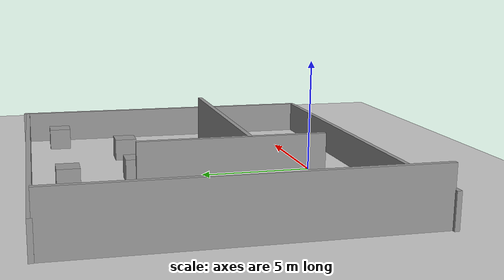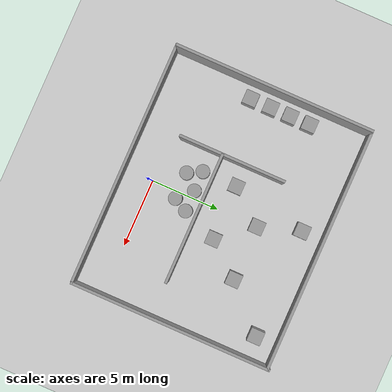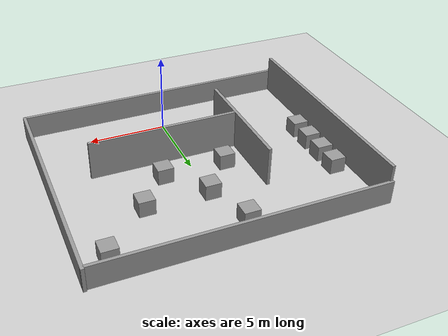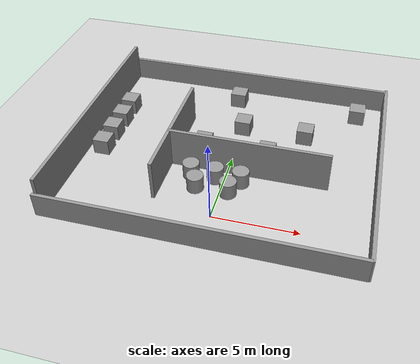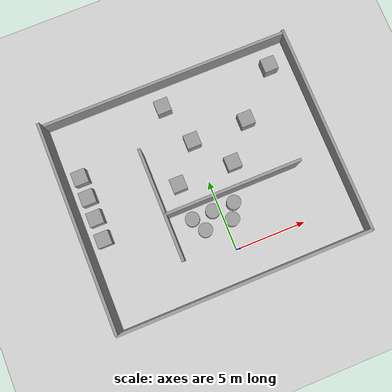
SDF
<sdf version="1.4">
 <world name="default">
  <model name="ground_plane">
   <static>1</static>
   <link name="link">
    <collision name="collision">
     <geometry><plane><normal>0 0 1</normal><size>100 100</size></plane></geometry>
     <surface><friction><ode><mu>100</mu><mu2>50</mu2></ode></friction></surface>
    </collision>
    <visual name="visual">
     <cast_shadows>0</cast_shadows>
     <geometry><plane><normal>0 0 1</normal><size>100 100</size></plane></geometry>
     <material>
      <script><uri>file://media/materials/scripts/gazebo.material</uri><name>Gazebo/Grey</name></script>
     </material>
    </visual>
    <velocity_decay><linear>0</linear><angular>0</angular></velocity_decay>
   </link>
  </model>
  <light name="sun" type="directional">
   <pose>0 0 10 0 -0 0</pose>
   <diffuse>0.8 0.8 0.8 1</diffuse>
   <specular>0.2 0.2 0.2 1</specular>
   <attenuation>
    <range>1000</range>
    <constant>0.9</constant>
    <linear>0.01</linear>
    <quadratic>0.001</quadratic>
   </attenuation>
   <direction>-0.5 0.1 -0.9</direction>
  </light>
  <model name="IAEA_map">
   <link name="Wall_0">
    <collision name="Wall_0_Collision">
     <geometry><box><size>18 0.2 1.5</size></box></geometry>
     <pose>0 0 0.75 0 -0 0</pose>
    </collision>
    <visual name="Wall_0_Visual">
     <pose>0 0 0.75 0 -0 0</pose>
     <geometry><box><size>18 0.2 1.5</size></box></geometry>
     <material>
      <script><uri>file://media/materials/scripts/gazebo.material</uri><name>Gazebo/Grey</name></script>
     </material>
    </visual>
    <velocity_decay><linear>0</linear><angular>0</angular></velocity_decay>
    <pose>-0.314004 -2.14957 0 0 -0 0</pose>
   </link>
   <link name="Wall_11">
    <collision name="Wall_11_Collision">
     <geometry><box><size>7.82992 0.2 2.5</size></box></geometry>
     <pose>0 0 1.25 0 -0 0</pose>
    </collision>
    <visual name="Wall_11_Visual">
     <pose>0 0 1.25 0 -0 0</pose>
     <geometry><box><size>7.82992 0.2 2.5</size></box></geometry>
     <material>
      <script><uri>file://media/materials/scripts/gazebo.material</uri><name>Gazebo/Grey</name></script>
     </material>
    </visual>
    <velocity_decay><linear>0</linear><angular>0</angular></velocity_decay>
    <pose>-3.54498 4.53843 0 0 0 -1.5708</pose>
   </link>
   <link name="Wall_16">
    <collision name="Wall_16_Collision">
     <geometry><box><size>9.57292 0.2 2.5</size></box></geometry>
     <pose>0 0 1.25 0 -0 0</pose>
    </collision>
    <visual name="Wall_16_Visual">
     <pose>0 0 1.25 0 -0 0</pose>
     <geometry><box><size>9.57292 0.2 2.5</size></box></geometry>
     <material>
      <script><uri>file://media/materials/scripts/gazebo.material</uri><name>Gazebo/Grey</name></script>
     </material>
    </visual>
    <velocity_decay><linear>0</linear><angular>0</angular></velocity_decay>
    <pose>1.21124 3.81538 0 0 -0 0</pose>
   </link>
   <link name="Wall_5">
    <collision name="Wall_5_Collision">
     <geometry><box><size>15 0.2 1.5</size></box></geometry>
     <pose>0 0 0.75 0 -0 0</pose>
    </collision>
    <visual name="Wall_5_Visual">
     <pose>0 0 0.75 0 -0 0</pose>
     <geometry><box><size>15 0.2 1.5</size></box></geometry>
     <material>
      <script><uri>file://media/materials/scripts/gazebo.material</uri><name>Gazebo/Grey</name></script>
     </material>
    </visual>
    <velocity_decay><linear>0</linear><angular>0</angular></velocity_decay>
    <pose>8.69081 5.28551 0 0 -0 1.5708</pose>
   </link>
   <link name="Wall_7">
    <collision name="Wall_7_Collision">
     <geometry><box><size>18 0.2 1.5</size></box></geometry>
     <pose>0 0 0.75 0 -0 0</pose>
    </collision>
    <visual name="Wall_7_Visual">
     <pose>0 0 0.75 0 -0 0</pose>
     <geometry><box><size>18 0.2 1.5</size></box></geometry>
     <material>
      <script><uri>file://media/materials/scripts/gazebo.material</uri><name>Gazebo/Grey</name></script>
     </material>
    </visual>
    <velocity_decay><linear>0</linear><angular>0</angular></velocity_decay>
    <pose>-0.209187 12.5871 0 0 -0 3.14159</pose>
   </link>
   <link name="Wall_9">
    <collision name="Wall_9_Collision">
     <geometry><box><size>14.6224 0.2 2.5</size></box></geometry>
     <pose>0 0 1.25 0 -0 0</pose>
    </collision>
    <visual name="Wall_9_Visual">
     <pose>0 0 1.25 0 -0 0</pose>
     <geometry><box><size>14.6224 0.2 2.5</size></box></geometry>
     <material>
      <script><uri>file://media/materials/scripts/gazebo.material</uri><name>Gazebo/Grey</name></script>
     </material>
    </visual>
    <velocity_decay><linear>0</linear><angular>0</angular></velocity_decay>
    <pose>-9.08132 5.23629 0 0 0 -1.5708</pose>
   </link>
   <static>1</static>
  </model>
  <physics type="ode">
   <max_step_size>0.001</max_step_size>
   <real_time_factor>1</real_time_factor>
   <real_time_update_rate>1000</real_time_update_rate>
   <gravity>0 0 -9.8</gravity>
  </physics>
  <scene><ambient>0.4 0.4 0.4 1</ambient><background>0.7 0.7 0.7 1</background><shadows>1</shadows></scene>
  <spherical_coordinates>
   <surface_model>EARTH_WGS84</surface_model>
   <latitude_deg>0</latitude_deg>
   <longitude_deg>0</longitude_deg>
   <elevation>0</elevation>
   <heading_deg>0</heading_deg>
  </spherical_coordinates>
  <model name="unit_box_1">
   <pose>-8 8.48014 0.5 0 -0 0</pose>
   <link name="link">
    <inertial>
     <mass>1</mass>
     <inertia><ixx>1</ixx><ixy>0</ixy><ixz>0</ixz><iyy>1</iyy><iyz>0</iyz><izz>1</izz></inertia>
    </inertial>
    <collision name="collision"><geometry><box><size>1 1 1</size></box></geometry></collision>
    <visual name="visual">
     <geometry><box><size>1 1 1</size></box></geometry>
     <material>
      <script><uri>file://media/materials/scripts/gazebo.material</uri><name>Gazebo/Grey</name></script>
     </material>
    </visual>
    <velocity_decay><linear>0</linear><angular>0</angular></velocity_decay>
   </link>
   <static>0</static>
  </model>
  <model name="unit_box_2">
   <pose>-8 7 0.5 0 -0 0</pose>
   <link name="link">
    <inertial>
     <mass>1</mass>
     <inertia><ixx>1</ixx><ixy>0</ixy><ixz>0</ixz><iyy>1</iyy><iyz>0</iyz><izz>1</izz></inertia>
    </inertial>
    <collision name="collision"><geometry><box><size>1 1 1</size></box></geometry></collision>
    <visual name="visual">
     <geometry><box><size>1 1 1</size></box></geometry>
     <material>
      <script><uri>file://media/materials/scripts/gazebo.material</uri><name>Gazebo/Grey</name></script>
     </material>
    </visual>
    <velocity_decay><linear>0</linear><angular>0</angular></velocity_decay>
   </link>
   <static>0</static>
  </model>
  <model name="unit_box_3">
   <pose>-8 5.51855 0.5 0 -0 0</pose>
   <link name="link">
    <inertial>
     <mass>1</mass>
     <inertia><ixx>1</ixx><ixy>0</ixy><ixz>0</ixz><iyy>1</iyy><iyz>0</iyz><izz>1</izz></inertia>
    </inertial>
    <collision name="collision"><geometry><box><size>1 1 1</size></box></geometry></collision>
    <visual name="visual">
     <geometry><box><size>1 1 1</size></box></geometry>
     <material>
      <script><uri>file://media/materials/scripts/gazebo.material</uri><name>Gazebo/Grey</name></script>
     </material>
    </visual>
    <velocity_decay><linear>0</linear><angular>0</angular></velocity_decay>
   </link>
   <static>0</static>
  </model>
  <model name="unit_box_4">
   <pose>-8 4 0.5 0 -0 0</pose>
   <link name="link">
    <inertial>
     <mass>1</mass>
     <inertia><ixx>1</ixx><ixy>0</ixy><ixz>0</ixz><iyy>1</iyy><iyz>0</iyz><izz>1</izz></inertia>
    </inertial>
    <collision name="collision"><geometry><box><size>1 1 1</size></box></geometry></collision>
    <visual name="visual">
     <geometry><box><size>1 1 1</size></box></geometry>
     <material>
      <script><uri>file://media/materials/scripts/gazebo.material</uri><name>Gazebo/Grey</name></script>
     </material>
    </visual>
    <velocity_decay><linear>0</linear><angular>0</angular></velocity_decay>
   </link>
   <static>0</static>
  </model>
  <model name="unit_cylinder_1">
   <pose>-2 3 0.5 0 -0 0</pose>
   <link name="link">
    <inertial>
     <mass>1</mass>
     <inertia><ixx>1</ixx><ixy>0</ixy><ixz>0</ixz><iyy>1</iyy><iyz>0</iyz><izz>1</izz></inertia>
    </inertial>
    <collision name="collision">
     <geometry><cylinder><radius>0.5</radius><length>1</length></cylinder></geometry>
    </collision>
    <visual name="visual">
     <geometry><cylinder><radius>0.5</radius><length>1</length></cylinder></geometry>
     <material>
      <script><uri>file://media/materials/scripts/gazebo.material</uri><name>Gazebo/Grey</name></script>
     </material>
    </visual>
    <velocity_decay><linear>0</linear><angular>0</angular></velocity_decay>
   </link>
   <static>0</static>
  </model>
  <model name="unit_cylinder_2">
   <pose>-0.527937 3 0.5 0 -0 0</pose>
   <link name="link">
    <inertial>
     <mass>1</mass>
     <inertia><ixx>1</ixx><ixy>0</ixy><ixz>0</ixz><iyy>1</iyy><iyz>0</iyz><izz>1</izz></inertia>
    </inertial>
    <collision name="collision">
     <geometry><cylinder><radius>0.5</radius><length>1</length></cylinder></geometry>
    </collision>
    <visual name="visual">
     <geometry><cylinder><radius>0.5</radius><length>1</length></cylinder></geometry>
     <material>
      <script><uri>file://media/materials/scripts/gazebo.material</uri><name>Gazebo/Grey</name></script>
     </material>
    </visual>
    <velocity_decay><linear>0</linear><angular>0</angular></velocity_decay>
   </link>
   <static>0</static>
  </model>
  <model name="unit_cylinder_3">
   <pose>1 3 0.5 0 -0 0</pose>
   <link name="link">
    <inertial>
     <mass>1</mass>
     <inertia><ixx>1</ixx><ixy>0</ixy><ixz>0</ixz><iyy>1</iyy><iyz>0</iyz><izz>1</izz></inertia>
    </inertial>
    <collision name="collision">
     <geometry><cylinder><radius>0.5</radius><length>1</length></cylinder></geometry>
    </collision>
    <visual name="visual">
     <geometry><cylinder><radius>0.5</radius><length>1</length></cylinder></geometry>
     <material>
      <script><uri>file://media/materials/scripts/gazebo.material</uri><name>Gazebo/Grey</name></script>
     </material>
    </visual>
    <velocity_decay><linear>0</linear><angular>0</angular></velocity_decay>
   </link>
   <static>0</static>
  </model>
  <model name="unit_cylinder_4">
   <pose>0.490503 2 0.5 0 -0 0</pose>
   <link name="link">
    <inertial>
     <mass>1</mass>
     <inertia><ixx>1</ixx><ixy>0</ixy><ixz>0</ixz><iyy>1</iyy><iyz>0</iyz><izz>1</izz></inertia>
    </inertial>
    <collision name="collision">
     <geometry><cylinder><radius>0.5</radius><length>1</length></cylinder></geometry>
    </collision>
    <visual name="visual">
     <geometry><cylinder><radius>0.5</radius><length>1</length></cylinder></geometry>
     <material>
      <script><uri>file://media/materials/scripts/gazebo.material</uri><name>Gazebo/Grey</name></script>
     </material>
    </visual>
    <velocity_decay><linear>0</linear><angular>0</angular></velocity_decay>
   </link>
   <static>0</static>
  </model>
  <model name="unit_cylinder_5">
   <pose>-1.45652 2 0.5 0 -0 0</pose>
   <link name="link">
    <inertial>
     <mass>1</mass>
     <inertia><ixx>1</ixx><ixy>0</ixy><ixz>0</ixz><iyy>1</iyy><iyz>0</iyz><izz>1</izz></inertia>
    </inertial>
    <collision name="collision">
     <geometry><cylinder><radius>0.5</radius><length>1</length></cylinder></geometry>
    </collision>
    <visual name="visual">
     <geometry><cylinder><radius>0.5</radius><length>1</length></cylinder></geometry>
     <material>
      <script><uri>file://media/materials/scripts/gazebo.material</uri><name>Gazebo/Grey</name></script>
     </material>
    </visual>
    <velocity_decay><linear>0</linear><angular>0</angular></velocity_decay>
   </link>
   <static>0</static>
  </model>
  <model name="unit_box_5">
   <pose>-2 5.55183 0.5 0 -0 0</pose>
   <link name="link">
    <inertial>
     <mass>1</mass>
     <inertia><ixx>1</ixx><ixy>0</ixy><ixz>0</ixz><iyy>1</iyy><iyz>0</iyz><izz>1</izz></inertia>
    </inertial>
    <collision name="collision"><geometry><box><size>1 1 1</size></box></geometry></collision>
    <visual name="visual">
     <geometry><box><size>1 1 1</size></box></geometry>
     <material>
      <script><uri>file://media/materials/scripts/gazebo.material</uri><name>Gazebo/Grey</name></script>
     </material>
    </visual>
    <velocity_decay><linear>0</linear><angular>0</angular></velocity_decay>
   </link>
   <static>0</static>
  </model>
  <model name="unit_box_6">
   <pose>0 8 0.5 0 -0 0</pose>
   <link name="link">
    <inertial>
     <mass>1</mass>
     <inertia><ixx>1</ixx><ixy>0</ixy><ixz>0</ixz><iyy>1</iyy><iyz>0</iyz><izz>1</izz></inertia>
    </inertial>
    <collision name="collision"><geometry><box><size>1 1 1</size></box></geometry></collision>
    <visual name="visual">
     <geometry><box><size>1 1 1</size></box></geometry>
     <material>
      <script><uri>file://media/materials/scripts/gazebo.material</uri><name>Gazebo/Grey</name></script>
     </material>
    </visual>
    <velocity_decay><linear>0</linear><angular>0</angular></velocity_decay>
   </link>
   <static>0</static>
  </model>
  <model name="unit_box_7">
   <pose>2 5.56913 0.5 0 -0 0</pose>
   <link name="link">
    <inertial>
     <mass>1</mass>
     <inertia><ixx>1</ixx><ixy>0</ixy><ixz>0</ixz><iyy>1</iyy><iyz>0</iyz><izz>1</izz></inertia>
    </inertial>
    <collision name="collision"><geometry><box><size>1 1 1</size></box></geometry></collision>
    <visual name="visual">
     <geometry><box><size>1 1 1</size></box></geometry>
     <material>
      <script><uri>file://media/materials/scripts/gazebo.material</uri><name>Gazebo/Grey</name></script>
     </material>
    </visual>
    <velocity_decay><linear>0</linear><angular>0</angular></velocity_decay>
   </link>
   <static>0</static>
  </model>
  <model name="unit_box_8">
   <pose>4 8 0.5 0 -0 0</pose>
   <link name="link">
    <inertial>
     <mass>1</mass>
     <inertia><ixx>1</ixx><ixy>0</ixy><ixz>0</ixz><iyy>1</iyy><iyz>0</iyz><izz>1</izz></inertia>
    </inertial>
    <collision name="collision"><geometry><box><size>1 1 1</size></box></geometry></collision>
    <visual name="visual">
     <geometry><box><size>1 1 1</size></box></geometry>
     <material>
      <script><uri>file://media/materials/scripts/gazebo.material</uri><name>Gazebo/Grey</name></script>
     </material>
    </visual>
    <velocity_decay><linear>0</linear><angular>0</angular></velocity_decay>
   </link>
   <static>0</static>
  </model>
  <model name="unit_box_9">
   <pose>7 11 0.5 0 -0 0</pose>
   <link name="link">
    <inertial>
     <mass>1</mass>
     <inertia><ixx>1</ixx><ixy>0</ixy><ixz>0</ixz><iyy>1</iyy><iyz>0</iyz><izz>1</izz></inertia>
    </inertial>
    <collision name="collision"><geometry><box><size>1 1 1</size></box></geometry></collision>
    <visual name="visual">
     <geometry><box><size>1 1 1</size></box></geometry>
     <material>
      <script><uri>file://media/materials/scripts/gazebo.material</uri><name>Gazebo/Grey</name></script>
     </material>
    </visual>
    <velocity_decay><linear>0</linear><angular>0</angular></velocity_decay>
   </link>
   <static>0</static>
  </model>
  <model name="unit_box_10">
   <pose>-1 11 0.5 0 -0 0</pose>
   <link name="link">
    <inertial>
     <mass>1</mass>
     <inertia><ixx>1</ixx><ixy>0</ixy><ixz>0</ixz><iyy>1</iyy><iyz>0</iyz><izz>1</izz></inertia>
    </inertial>
    <collision name="collision"><geometry><box><size>1 1 1</size></box></geometry></collision>
    <visual name="visual">
     <geometry><box><size>1 1 1</size></box></geometry>
     <material>
      <script><uri>file://media/materials/scripts/gazebo.material</uri><name>Gazebo/Grey</name></script>
     </material>
    </visual>
    <velocity_decay><linear>0</linear><angular>0</angular></velocity_decay>
   </link>
   <static>0</static>
  </model>
 </world>
</sdf>
